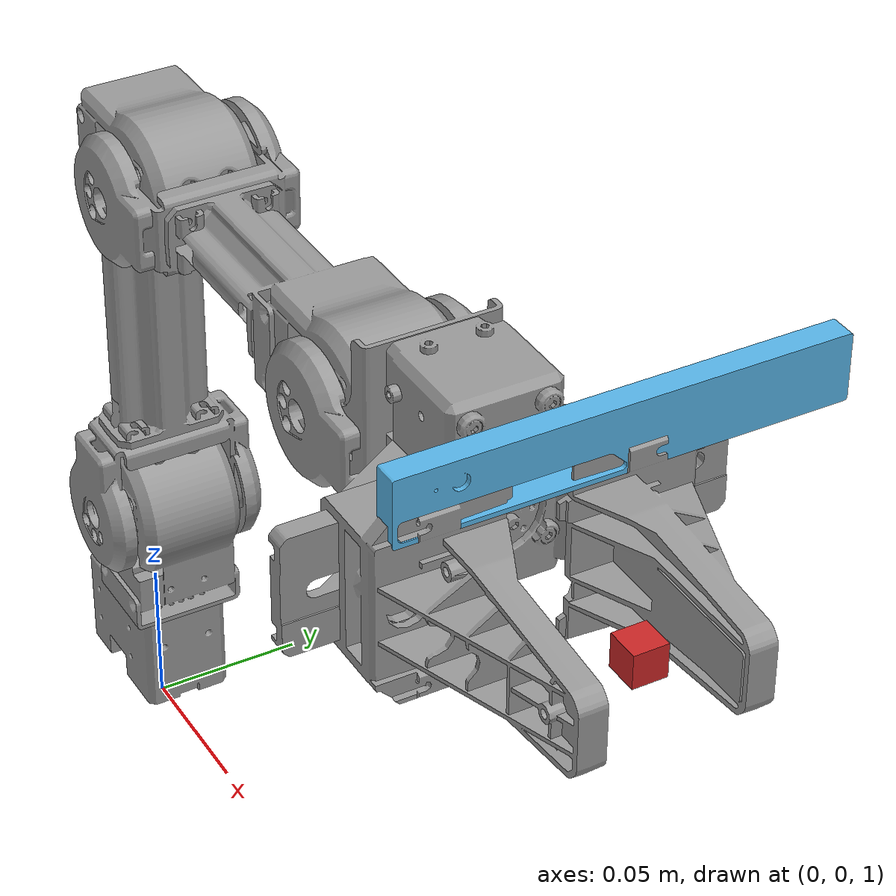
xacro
<?xml version="1.0"?>
<!-- Open_Manipulator Chain -->
<robot name="open_manipulator" xmlns:xacro="http://ros.org/wiki/xacro">

  <!-- Import all Gazebo-customization elements, including Gazebo colors -->
  <xacro:include filename="$(find open_manipulator_description)/urdf/open_manipulator.gazebo.xacro" />

  <!-- Import Rviz colors -->
  <xacro:include filename="$(find open_manipulator_description)/urdf/materials.xacro" />

  <!-- Import Transmission -->
  <xacro:include filename="$(find open_manipulator_description)/urdf/transmission.xacro" />

  <!-- World -->
  <link name="world">
  </link>

  <!-- World fixed joint-->
  <joint name="world_fixed" type="fixed">
    <origin xyz="0 0 1.01470" rpy="0 0 0"/>
    <parent link="world"/>
    <child link="link1"/>
  </joint>

  <!-- Link 1 -->
  <link name="link1">
    <visual>
      <origin xyz="0 0 0" rpy="0 0 0"/>
      <geometry>
        <mesh filename="package://open_manipulator_description/meshes/chain_link1.stl" scale="0.001 0.001 0.001"/>
      </geometry>
      <material name="grey"/>
    </visual>

    <collision>
      <origin xyz="0 0 0" rpy="0 0 0"/>
      <geometry>
        <mesh filename="package://open_manipulator_description/meshes/chain_link1.stl" scale="0.001 0.001 0.001"/>
      </geometry>
    </collision>

     <inertial>
      <origin xyz="3.0876154e-04 0.0000000e+00 -1.2176461e-04" />
      <mass value="7.9119962e-02" />
      <inertia ixx="1.2505234e-05" ixy="0.0" ixz="-1.7855208e-07"
               iyy="2.1898364e-05" iyz="0.0"
               izz="1.9267361e-05" />
    </inertial>
  </link>

  <!-- Joint 1 -->
  <joint name="joint1" type="revolute">
    <parent link="link1"/>
    <child link="link2"/>
    <origin xyz="0.012 0.0 0.017" rpy="0 0 0"/>
    <axis xyz="0 0 1"/>
    <limit velocity="4.8" effort="1" lower="${-pi*0.9}" upper="${pi*0.9}" />
  </joint>

  <!--  Link 2 -->
  <link name="link2">
    <visual>
      <origin xyz="0 0 0.019" rpy="0 0 0"/>
      <geometry>
        <mesh filename="package://open_manipulator_description/meshes/chain_link2.stl" scale="0.001 0.001 0.001"/>
      </geometry>
      <material name="grey"/>
    </visual>

    <collision>
      <origin xyz="0 0 0.019" rpy="0 0 0"/>
      <geometry>
        <mesh filename="package://open_manipulator_description/meshes/chain_link2.stl" scale="0.001 0.001 0.001"/>
      </geometry>
    </collision>

     <inertial>
      <origin xyz="-3.0184870e-04 5.4043684e-04 ${0.018 + 2.9433464e-02}" />
      <mass value="9.8406837e-02" />
      <inertia ixx="3.4543422e-05" ixy="-1.6031095e-08" ixz="-3.8375155e-07"
               iyy="3.2689329e-05" iyz="2.8511935e-08"
               izz="1.8850320e-05" />
    </inertial>
  </link>

  <!--  Joint 2 -->
  <joint name="joint2" type="revolute">
    <parent link="link2"/>
    <child link="link3"/>
    <origin xyz="0.0 0.0 0.0595" rpy="0 0 0"/>
    <axis xyz="0 1 0"/>
    <limit velocity="4.8" effort="1" lower="${-pi*0.57}" upper="${pi*0.5}" />
  </joint>

  <!--  Link 3 -->
  <link name="link3">
    <visual>
      <origin xyz="0 0 0" rpy="0 0 0"/>
      <geometry>
        <mesh filename="package://open_manipulator_description/meshes/chain_link3.stl" scale="0.001 0.001 0.001"/>
      </geometry>
      <material name="grey"/>
    </visual>

    <collision>
      <origin xyz="0 0 0" rpy="0 0 0"/>
      <geometry>
        <mesh filename="package://open_manipulator_description/meshes/chain_link3.stl" scale="0.001 0.001 0.001"/>
      </geometry>
    </collision>

     <inertial>
      <origin xyz="1.0308393e-02 3.7743363e-04 1.0170197e-01" />
      <mass value="1.3850917e-01" />
      <inertia ixx="3.3055381e-04" ixy="-9.7940978e-08" ixz="-3.8505711e-05"
               iyy="3.4290447e-04" iyz="-1.5717516e-06"
               izz="6.0346498e-05" />
    </inertial>
  </link>

  <!--  Joint 3 -->
  <joint name="joint3" type="revolute">
    <parent link="link3"/>
    <child link="link4"/>
    <origin xyz="0.024 0 0.128" rpy="0 0 0"/>
    <axis xyz="0 1 0"/>
    <limit velocity="4.8" effort="1" lower="${-pi*0.3}" upper="${pi*0.44}" />
  </joint>

  <!--  Link 4 -->
  <link name="link4">
    <visual>
      <origin xyz="0 0 0" rpy="0 0 0"/>
      <geometry>
        <mesh filename="package://open_manipulator_description/meshes/chain_link4.stl" scale="0.001 0.001 0.001"/>
      </geometry>
      <material name="grey"/>
    </visual>

    <collision>
      <origin xyz="0 0 0" rpy="0 0 0"/>
      <geometry>
        <mesh filename="package://open_manipulator_description/meshes/chain_link4.stl" scale="0.001 0.001 0.001"/>
      </geometry>
    </collision>

     <inertial>
      <origin xyz="9.0909590e-02 3.8929816e-04 2.2413279e-04" />
      <mass value="1.3274562e-01" />
      <inertia ixx="3.0654178e-05" ixy="-1.2764155e-06" ixz="-2.6874417e-07"
               iyy="2.4230292e-04" iyz="1.1559550e-08"
               izz="2.5155057e-04" />
    </inertial>
  </link>

  <!--  Joint 4 -->
  <joint name="joint4" type="revolute">
    <parent link="link4"/>
    <child link="link5"/>
    <origin xyz="0.124 0.0 0.0" rpy="0 0 0"/>
    <axis xyz="0 1 0"/>
    <limit velocity="4.8" effort="1" lower="${-pi*0.57}" upper="${pi*0.65}" />
  </joint>

  <!--  Link 5 -->
  <link name="link5">
    <visual>
      <origin xyz="0 0 0" rpy="0 0 0"/>
      <geometry>
        <mesh filename="package://open_manipulator_description/meshes/chain_link5.stl" scale="0.001 0.001 0.001"/>
      </geometry>
      <material name="grey"/>
    </visual>

    <collision>
      <origin xyz="0 0 0" rpy="0 0 0"/>
      <geometry>
        <mesh filename="package://open_manipulator_description/meshes/chain_link5.stl" scale="0.001 0.001 0.001"/>
      </geometry>
    </collision>

     <inertial>
      <origin xyz="4.4206755e-02 3.6839985e-07 8.9142216e-03" />
      <mass value="1.4327573e-01" />
      <inertia ixx="8.0870749e-05" ixy="0.0" ixz="-1.0157896e-06"
               iyy="7.5980465e-05" iyz="0.0"
               izz="9.3127351e-05" />
    </inertial>
  </link>

  <!--  Gripper link -->
  <link name="gripper_link">
    <visual>
      <origin xyz="0.0 0.0 0" rpy="0 0 0"/>
      <geometry>
        <mesh filename="package://open_manipulator_description/meshes/chain_link_grip_l.stl" scale="0.001 0.001 0.001"/>
      </geometry>
      <material name="grey"/>
    </visual>

    <collision>
      <origin xyz="0.0 0.0 0" rpy="0 0 0"/>
      <geometry>
        <mesh filename="package://open_manipulator_description/meshes/chain_link_grip_l.stl" scale="0.001 0.001 0.001"/>
      </geometry>
    </collision>

    <inertial>
      <origin xyz="0 0 0" />
      <mass value="0.017" />
      <inertia ixx="1.0e-03" ixy="0.0" ixz="0.0"
               iyy="1.0e-03" iyz="0.0"
               izz="1.0e-03" />
    </inertial>

  </link>

  <!--  Gripper joint -->
  <joint name="gripper" type="prismatic">
    <parent link="link5"/>
    <child link="gripper_link"/>
    <origin xyz="0.0817 0.021 0.0" rpy="0 0 0"/>
    <axis xyz="0 1 0"/>
    <limit velocity="4.8" effort="1" lower="-0.010" upper="0.019" />
  </joint>

  <!--  Gripper link sub -->
  <link name="gripper_link_sub">
    <visual>
      <origin xyz="0.0 -0.0 0" rpy="0 0 0"/>
      <geometry>
        <mesh filename="package://open_manipulator_description/meshes/chain_link_grip_r.stl" scale="0.001 0.001 0.001"/>
      </geometry>
      <material name="grey"/>
    </visual>

    <collision>
      <origin xyz="0.0 -0.0 0" rpy="0 0 0"/>
      <geometry>
        <mesh filename="package://open_manipulator_description/meshes/chain_link_grip_r.stl" scale="0.001 0.001 0.001"/>
      </geometry>
    </collision>

    <inertial>
      <origin xyz="0 0 0" />
      <mass value="0.017" />
      <inertia ixx="1.0e-03" ixy="0.0" ixz="0.0"
               iyy="1.0e-03" iyz="0.0"
               izz="1.0e-03" />
    </inertial>

  </link>

  <!--  Gripper joint sub -->
  <joint name="gripper_sub" type="prismatic">
    <parent link="link5"/>
    <child link="gripper_link_sub"/>
    <origin xyz="0.0817 -0.021 0" rpy="0 0 0"/>
    <axis xyz="0 -1 0"/>
    <limit velocity="4.8" effort="1" lower="-0.010" upper="0.019" />
    <mimic joint="gripper" multiplier="1"/>
  </joint>

  <!-- end effector joint -->
  <joint name="end_effector_joint" type="fixed">
    <origin xyz="0.126 0.0 0.0" rpy="0 0 0"/>
    <parent link="link5"/>
    <child link="end_effector_link"/>
  </joint>

  <!-- end effector link -->
  <link name="end_effector_link">
    <visual>
      <origin xyz="0 0 0" rpy="0 0 0"/>
      <geometry>
        <box size="0.01 0.01 0.01" />
      </geometry>
      <material name="red"/>
     </visual>

    <inertial>
      <origin xyz="0.0 0.0 0.0" rpy="0 0 0"/>
      <mass value="0.001"/>
      <inertia ixx="1.0e-06" ixy="0.0" ixz="0.0" iyy="1.0e-06" iyz="0.0" izz="1.0e-06" />
    </inertial>
  </link>

 <!-- Camera link -->
    <link name="rs200_camera">
        <visual>
            <origin rpy="0 0 0" xyz="0 0 0.03"/>
            <geometry>
                <mesh filename="package://realsense_gazebo_plugin/models/realsense_camera/meshes/realsense.dae"/>
            </geometry>
        </visual>
        <collision>
            <geometry>
                <box size="0.0078 0.130 0.0192"/>
            </geometry>
        </collision>
        <inertial>
            <mass value="0.0615752"/>
            <origin rpy="0 0 0" xyz="0 0 0"/>
            <inertia ixx="9.108e-05"
                     ixy="0"
                     ixz="0"
                     iyy="2.51e-06"
                     iyz="0"
                     izz="8.931e-05"
            />
        </inertial>
    </link>

    <!-- Connect camera to parent frame-->
    <joint name="realsense_joint" type="fixed">
        <parent link="gripper_link"/>
        <child link="rs200_camera"/>

    </joint>

    <!-- Virtual links representing the cameras positons and orientations-->

    <link name="depth" />
    <link name="ired1" />
    <link name="ired2" />

    <!-- Joints positioning the virtual links with respect to the camera main link-->

    <joint name="depth_joint" type="fixed">
        <parent link="rs200_camera" />
        <child link="depth" />
        <origin xyz="0 -0.03 0.004" rpy="0 0 0"/>
    </joint>

    <joint name="ired1_joint" type="fixed">
        <parent link="rs200_camera" />
        <child link="ired1" />
        <origin xyz="0 -0.06 0.004" rpy="0 0 0"/>
    </joint>

    <joint name="ired2_joint" type="fixed">
        <parent link="rs200_camera" />
        <child link="ired2" />
        <origin xyz="0 0.01 0.004" rpy="0 0 0"/>
    </joint>

<!-- GAZEBO DEFINITIONS ***************************************-->

    <!-- Load plugin to the model ("robot" in urdf format)-->
    <gazebo>
        <plugin name="r200" filename="librealsense_gazebo_plugin.so"/>
    </gazebo>

    <!-- Load parameters to model's main link-->
    <gazebo reference="rs200_camera">
        <self_collide>0</self_collide>
        <enable_wind>0</enable_wind>
        <kinematic>0</kinematic>
        <gravity>1</gravity>
        <mu2>1</mu2>
        <fdir1>0 0 0</fdir1>
        <kp>1e+13</kp>
        <kd>1</kd>

        <sensor name="color" type="camera">
            <pose frame="">0 -0.046 0.004 0 0 0</pose>
            <camera name="rs200_camera">
            <horizontal_fov>1.047</horizontal_fov>
            <image>
                <width>640</width>
                <height>480</height>
                <format>RGB_INT8</format>
            </image>
            <clip>
                <near>0.1</near>
                <far>100</far>
            </clip>
            <noise>
                <type>gaussian</type>
                <mean>0.0</mean>
                <stddev>0.007</stddev>
            </noise>
            </camera>
            <always_on>1</always_on>
            <update_rate>60</update_rate>
            <visualize>1</visualize>
        </sensor>
        <sensor name="ired1" type="camera">
            <pose frame="">0 -0.06 0.004 0 0 0</pose>
            <camera name="rs200_camera">
            <horizontal_fov>1.047</horizontal_fov>
            <image>
                <width>640</width>
                <height>480</height>
                <format>L_INT8</format>
            </image>
            <clip>
                <near>0.1</near>
                <far>100</far>
            </clip>
            <noise>
                <type>gaussian</type>
                <mean>0.0</mean>
                <stddev>0.05</stddev>
            </noise>
            </camera>
            <always_on>1</always_on>
            <update_rate>60</update_rate>
            <visualize>0</visualize>
        </sensor>
        <sensor name="ired2" type="camera">
            <pose frame="">0 0.01 0.004 0 0 0</pose>
            <camera name="rs200_camera">
            <horizontal_fov>1.047</horizontal_fov>
            <image>
                <width>640</width>
                <height>480</height>
                <format>L_INT8</format>
            </image>
            <clip>
                <near>0.1</near>
                <far>100</far>
            </clip>
            <noise>
                <type>gaussian</type>
                <mean>0.0</mean>
                <stddev>0.05</stddev>
            </noise>
            </camera>
            <always_on>1</always_on>
            <update_rate>60</update_rate>
            <visualize>0</visualize>
        </sensor>
        <sensor name="depth" type="depth">
            <pose frame="">0 -0.03 0.004 0 0 0</pose>
            <camera name="rs200_camera">
            <horizontal_fov>1.047</horizontal_fov>
            <image>
                    <width>640</width>
                    <height>480</height>
            </image>
            <clip>
                    <near>0.1</near>
                    <far>100</far>
            </clip>
            <noise>
                    <type>gaussian</type>
                    <mean>0.0</mean>
                    <stddev>0.100</stddev>
            </noise>
            </camera>
            <always_on>1</always_on>
            <update_rate>60</update_rate>
            <visualize>0</visualize>
        </sensor>
    </gazebo>
</robot>
